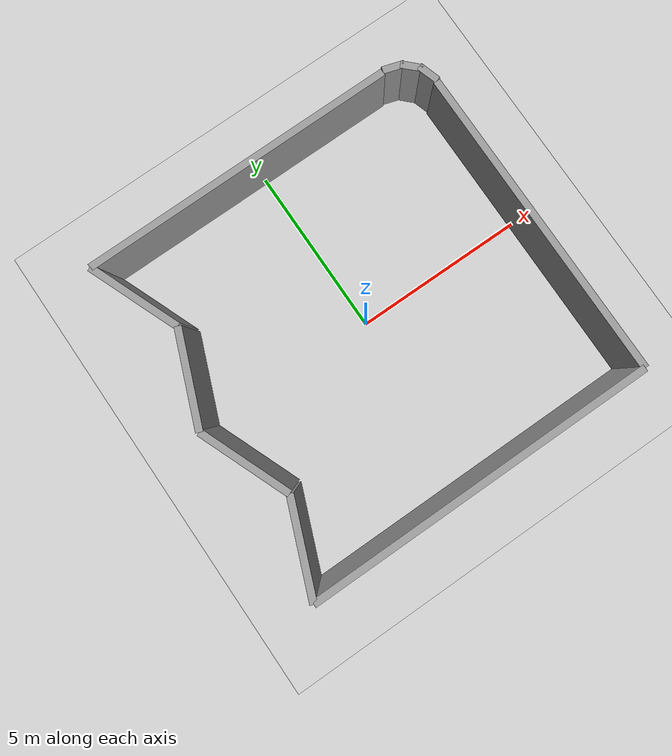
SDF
<?xml version="1.0" ?>
<sdf version="1.6">
  <world name="tesi_stanza1">
    <include>
      <uri>model://sun</uri>
    </include>
    <include>
      <uri>model://ground_plane</uri>
    </include>
    <plugin name='ActorPosesPlugin' filename='libActorPosesPlugin.so'/>

    <!-- 1. PARETE SUD (Normale) -->
    <model name="wall_south">
      <static>true</static>
      <link name="link">
        <pose>0 -5 1.0 0 0 0</pose>
        <collision name="collision"><geometry><box><size>10 0.2 2.0</size></box></geometry></collision>
        <visual name="visual"><geometry><box><size>10 0.2 2.0</size></box></geometry><material><script><uri>file://media/materials/scripts/gazebo.material</uri><name>Gazebo/Grey</name></script></material></visual>
      </link>
    </model>

    <!-- 2. PARETE EST (Normale - parte dritta) -->
    <model name="wall_east">
      <static>true</static>
      <link name="link">
        <pose>5 -0.5 1.0 0 0 1.5708</pose>
        <collision name="collision"><geometry><box><size>9 0.2 2.0</size></box></geometry></collision>
        <visual name="visual"><geometry><box><size>9 0.2 2.0</size></box></geometry><material><script><uri>file://media/materials/scripts/gazebo.material</uri><name>Gazebo/Grey</name></script></material></visual>
      </link>
    </model>

    <!-- 3. PARETE NORD (Normale - parte dritta) -->
    <model name="wall_north">
      <static>true</static>
      <link name="link">
        <pose>-0.5 5 1.0 0 0 0</pose>
        <collision name="collision"><geometry><box><size>9 0.2 2.0</size></box></geometry></collision>
        <visual name="visual"><geometry><box><size>9 0.2 2.0</size></box></geometry><material><script><uri>file://media/materials/scripts/gazebo.material</uri><name>Gazebo/Grey</name></script></material></visual>
      </link>
    </model>

    <!-- 4. ANGOLO ARROTONDATO (Nord-Est) -->
    <model name="corner_round_1">
      <static>true</static>
      <link name="link">
        <pose>4.3 4.95 1.0 0 0 -0.3</pose>
        <collision name="collision"><geometry><box><size>0.6 0.2 2.0</size></box></geometry></collision>
        <visual name="visual"><geometry><box><size>0.6 0.2 2.0</size></box></geometry><material><script><uri>file://media/materials/scripts/gazebo.material</uri><name>Gazebo/Grey</name></script></material></visual>
      </link>
    </model>
    <model name="corner_round_2">
      <static>true</static>
      <link name="link">
        <pose>4.7 4.7 1.0 0 0 -0.785</pose>
        <collision name="collision"><geometry><box><size>0.6 0.2 2.0</size></box></geometry></collision>
        <visual name="visual"><geometry><box><size>0.6 0.2 2.0</size></box></geometry><material><script><uri>file://media/materials/scripts/gazebo.material</uri><name>Gazebo/Grey</name></script></material></visual>
      </link>
    </model>
    <model name="corner_round_3">
      <static>true</static>
      <link name="link">
        <pose>4.95 4.3 1.0 0 0 -1.27</pose>
        <collision name="collision"><geometry><box><size>0.6 0.2 2.0</size></box></geometry></collision>
        <visual name="visual"><geometry><box><size>0.6 0.2 2.0</size></box></geometry><material><script><uri>file://media/materials/scripts/gazebo.material</uri><name>Gazebo/Grey</name></script></material></visual>
      </link>
    </model>

    <!-- 5. PARETE A ZIG-ZAG (Ovest) -->
    <model name="zigzag_1">
      <static>true</static>
      <link name="link">
        <pose>-4.5 3.75 1.0 0 0 -1.19</pose>
        <collision name="collision"><geometry><box><size>2.7 0.2 2.0</size></box></geometry></collision>
        <visual name="visual"><geometry><box><size>2.7 0.2 2.0</size></box></geometry><material><script><uri>file://media/materials/scripts/gazebo.material</uri><name>Gazebo/Grey</name></script></material></visual>
      </link>
    </model>
    <model name="zigzag_2">
      <static>true</static>
      <link name="link">
        <pose>-4.5 1.25 1.0 0 0 1.19</pose>
        <collision name="collision"><geometry><box><size>2.7 0.2 2.0</size></box></geometry></collision>
        <visual name="visual"><geometry><box><size>2.7 0.2 2.0</size></box></geometry><material><script><uri>file://media/materials/scripts/gazebo.material</uri><name>Gazebo/Grey</name></script></material></visual>
      </link>
    </model>
    <model name="zigzag_3">
      <static>true</static>
      <link name="link">
        <pose>-4.5 -1.25 1.0 0 0 -1.19</pose>
        <collision name="collision"><geometry><box><size>2.7 0.2 2.0</size></box></geometry></collision>
        <visual name="visual"><geometry><box><size>2.7 0.2 2.0</size></box></geometry><material><script><uri>file://media/materials/scripts/gazebo.material</uri><name>Gazebo/Grey</name></script></material></visual>
      </link>
    </model>
    <model name="zigzag_4">
      <static>true</static>
      <link name="link">
        <pose>-4.5 -3.75 1.0 0 0 1.19</pose>
        <collision name="collision"><geometry><box><size>2.7 0.2 2.0</size></box></geometry></collision>
        <visual name="visual"><geometry><box><size>2.7 0.2 2.0</size></box></geometry><material><script><uri>file://media/materials/scripts/gazebo.material</uri><name>Gazebo/Grey</name></script></material></visual>
      </link>
    </model>

    <physics type="ode">
      <real_time_update_rate>1000.0</real_time_update_rate>
      <max_step_size>0.001</max_step_size>
      <real_time_factor>1</real_time_factor>
      <ode>
        <solver>
          <type>quick</type>
          <iters>150</iters>
        </solver>
      </ode>
    </physics>
  </world>
</sdf>
